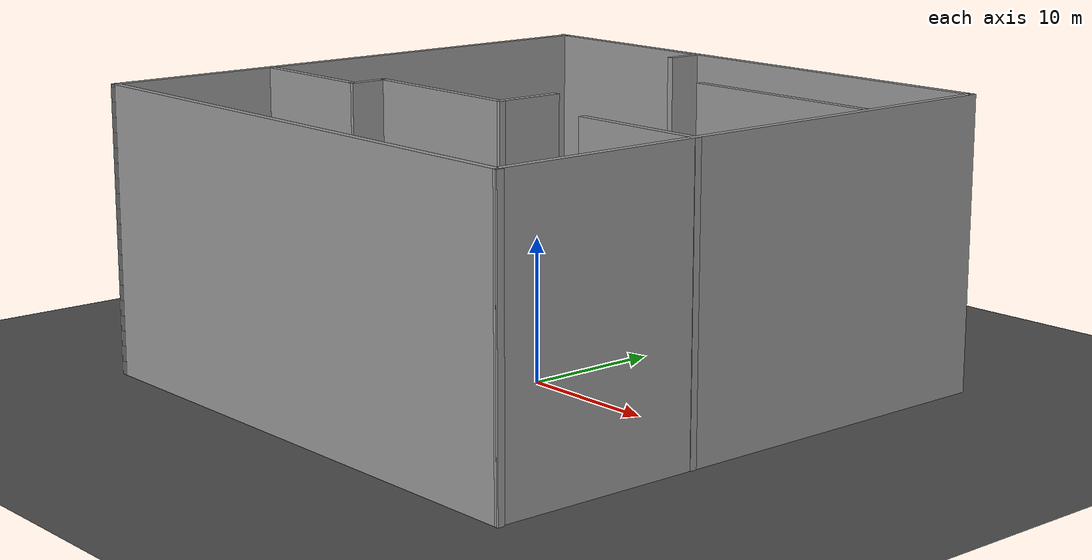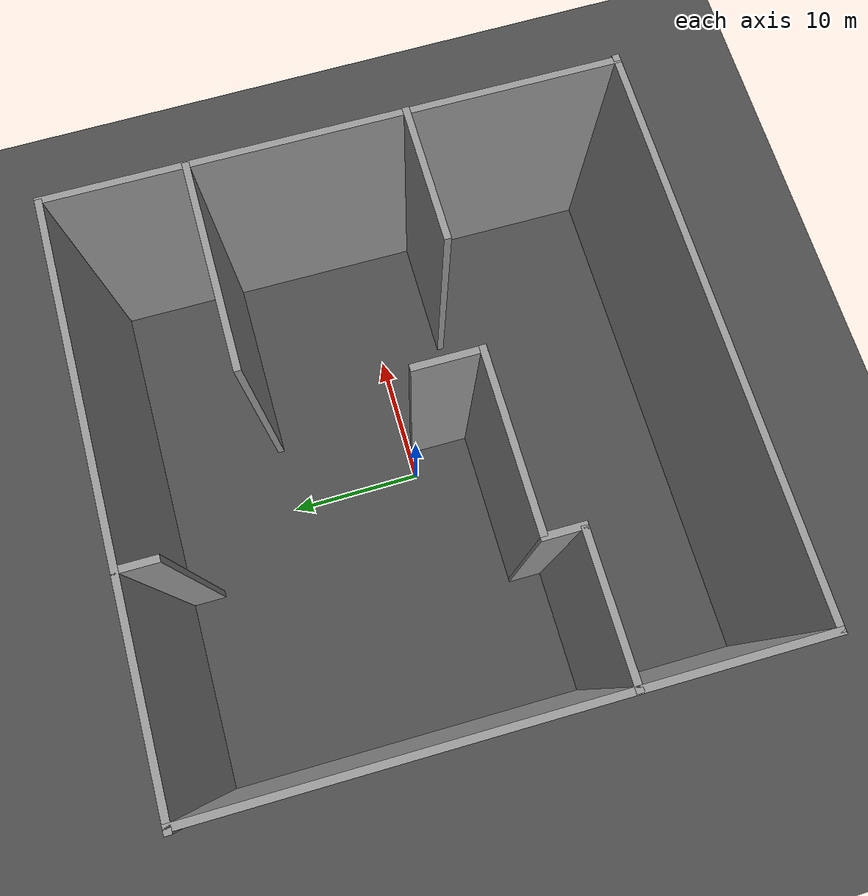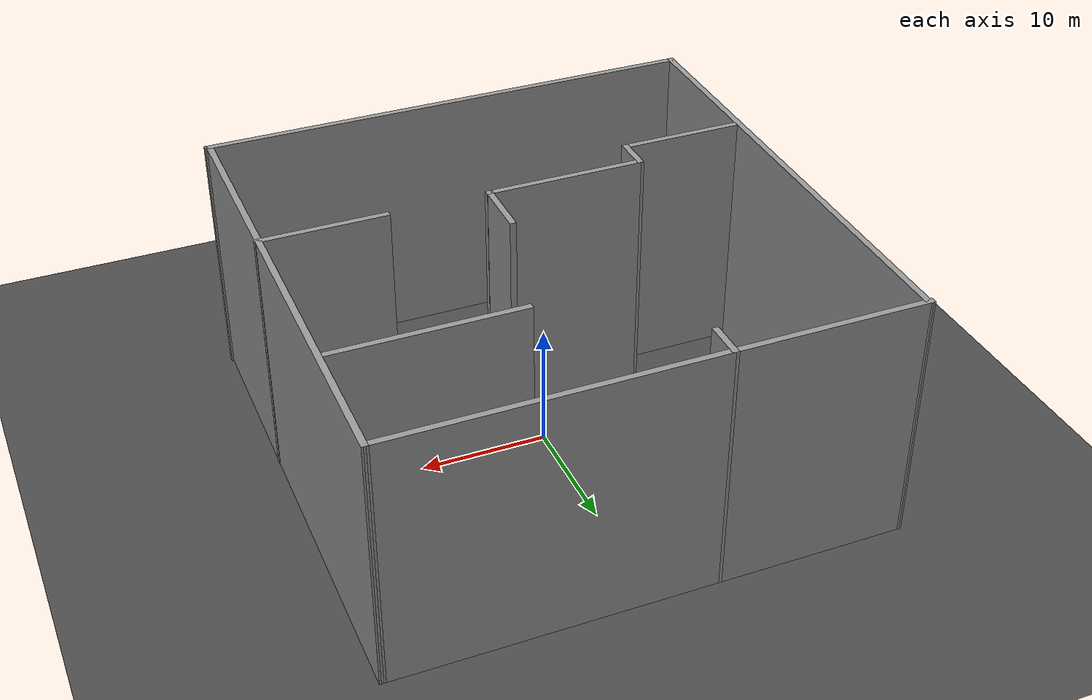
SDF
<sdf version="1.6">
 <world name="default">
  <light name="sun" type="directional">
   <pose>0 0 10 0 -0 0</pose>
   <diffuse>0.8 0.8 0.8 1</diffuse>
   <specular>0.2 0.2 0.2 1</specular>
   <attenuation>
    <range>1000</range>
    <constant>0.9</constant>
    <linear>0.01</linear>
    <quadratic>0.001</quadratic>
   </attenuation>
   <direction>-0.5 0.1 -0.9</direction>
  </light>
  <model name="ground_plane">
   <static>1</static>
   <link name="link">
    <collision name="collision">
     <geometry><plane><normal>0 0 1</normal><size>40000 40000</size></plane></geometry>
     <surface>
      <contact><collide_bitmask>65535</collide_bitmask></contact>
      <friction><ode><mu>100</mu><mu2>50</mu2></ode></friction>
     </surface>
    </collision>
    <visual name="visual">
     <cast_shadows>0</cast_shadows>
     <geometry><plane><normal>0 0 1</normal><size>50 50</size></plane></geometry>
     <material>
      <script><uri>file://media/materials/scripts/gazebo.material</uri><name>Gazebo/Road</name></script>
     </material>
    </visual>
   </link>
  </model>
  <gravity>0 0 -9.8</gravity>
  <magnetic_field>6e-06 2.3e-05 -4.2e-05</magnetic_field>
  <physics name="default_physics" default="0" type="ode">
   <max_step_size>0.001</max_step_size>
   <real_time_factor>1</real_time_factor>
   <real_time_update_rate>1000</real_time_update_rate>
  </physics>
  <scene><ambient>0.4 0.4 0.4 1</ambient><background>0.7 0.7 0.7 1</background><shadows>1</shadows></scene>
  <audio><device>default</device></audio>
  <spherical_coordinates>
   <surface_model>EARTH_WGS84</surface_model>
   <latitude_deg>0</latitude_deg>
   <longitude_deg>0</longitude_deg>
   <elevation>0</elevation>
   <heading_deg>0</heading_deg>
  </spherical_coordinates>
  <atmosphere type="adiabatic"/>
  <model name="wall1_clone">
   <link name="link">
    <enable_wind>1</enable_wind>
    <inertial>
     <mass>1</mass>
     <inertia><ixx>1</ixx><ixy>0</ixy><ixz>0</ixz><iyy>1</iyy><iyz>0</iyz><izz>1</izz></inertia>
    </inertial>
    <visual name="visual">
     <cast_shadows>0</cast_shadows>
     <geometry><box><size>40 0.5 20</size></box></geometry>
     <material>
      <script>
       <uri>model://grey_wall/materials/scripts</uri>
       <uri>model://grey_wall/materials/textures</uri>
       <name>vrc/grey_wall</name>
      </script>
      <shader type="pixel"><normal_map>__default__</normal_map></shader>
      <ambient>1 1 1 1</ambient>
      <diffuse>1 1 1 1</diffuse>
      <specular>0 0 0 1</specular>
      <emissive>0 0 0 1</emissive>
     </material>
    </visual>
    <collision name="collision">
     <geometry><box><size>40 0.5 20</size></box></geometry>
     <surface>
      <friction>
       <ode><mu>1</mu><mu2>1</mu2><fdir1>0 0 0</fdir1><slip1>0</slip1><slip2>0</slip2></ode>
       <torsional>
        <coefficient>1</coefficient>
        <patch_radius>0</patch_radius>
        <surface_radius>0</surface_radius>
        <use_patch_radius>1</use_patch_radius>
        <ode><slip>0</slip></ode>
       </torsional>
      </friction>
      <bounce><restitution_coefficient>0</restitution_coefficient><threshold>1e+06</threshold></bounce>
      <contact>
       <collide_without_contact>0</collide_without_contact>
       <collide_without_contact_bitmask>1</collide_without_contact_bitmask>
       <collide_bitmask>1</collide_bitmask>
       <ode>
        <soft_cfm>0</soft_cfm>
        <soft_erp>0.2</soft_erp>
        <kp>1e+13</kp>
        <kd>1</kd>
        <max_vel>0.01</max_vel>
        <min_depth>0</min_depth>
       </ode>
       <bullet>
        <split_impulse>1</split_impulse>
        <split_impulse_penetration_threshold>-0.01</split_impulse_penetration_threshold>
        <soft_cfm>0</soft_cfm>
        <soft_erp>0.2</soft_erp>
        <kp>1e+13</kp>
        <kd>1</kd>
       </bullet>
      </contact>
     </surface>
    </collision>
   </link>
   <static>1</static>
   <pose>0 19.75 10 0 -0 0</pose>
  </model>
  <model name="wall1">
   <link name="link">
    <enable_wind>1</enable_wind>
    <inertial>
     <mass>1</mass>
     <inertia><ixx>1</ixx><ixy>0</ixy><ixz>0</ixz><iyy>1</iyy><iyz>0</iyz><izz>1</izz></inertia>
    </inertial>
    <visual name="visual">
     <cast_shadows>0</cast_shadows>
     <geometry><box><size>40 0.5 20</size></box></geometry>
     <material>
      <script>
       <uri>model://grey_wall/materials/scripts</uri>
       <uri>model://grey_wall/materials/textures</uri>
       <name>vrc/grey_wall</name>
      </script>
      <shader type="pixel"><normal_map>__default__</normal_map></shader>
      <ambient>1 1 1 1</ambient>
      <diffuse>1 1 1 1</diffuse>
      <specular>0 0 0 1</specular>
      <emissive>0 0 0 1</emissive>
     </material>
    </visual>
    <collision name="collision">
     <geometry><box><size>40 0.5 20</size></box></geometry>
     <surface>
      <friction>
       <ode><mu>1</mu><mu2>1</mu2><fdir1>0 0 0</fdir1><slip1>0</slip1><slip2>0</slip2></ode>
       <torsional>
        <coefficient>1</coefficient>
        <patch_radius>0</patch_radius>
        <surface_radius>0</surface_radius>
        <use_patch_radius>1</use_patch_radius>
        <ode><slip>0</slip></ode>
       </torsional>
      </friction>
      <bounce><restitution_coefficient>0</restitution_coefficient><threshold>1e+06</threshold></bounce>
      <contact>
       <collide_without_contact>0</collide_without_contact>
       <collide_without_contact_bitmask>1</collide_without_contact_bitmask>
       <collide_bitmask>1</collide_bitmask>
       <ode>
        <soft_cfm>0</soft_cfm>
        <soft_erp>0.2</soft_erp>
        <kp>1e+13</kp>
        <kd>1</kd>
        <max_vel>0.01</max_vel>
        <min_depth>0</min_depth>
       </ode>
       <bullet>
        <split_impulse>1</split_impulse>
        <split_impulse_penetration_threshold>-0.01</split_impulse_penetration_threshold>
        <soft_cfm>0</soft_cfm>
        <soft_erp>0.2</soft_erp>
        <kp>1e+13</kp>
        <kd>1</kd>
       </bullet>
      </contact>
     </surface>
    </collision>
   </link>
   <static>1</static>
   <pose>0 -19.75 10 0 -0 0</pose>
  </model>
  <model name="wall1_1_clone_clone">
   <link name="link">
    <enable_wind>1</enable_wind>
    <inertial>
     <mass>1</mass>
     <inertia><ixx>1</ixx><ixy>0</ixy><ixz>0</ixz><iyy>1</iyy><iyz>0</iyz><izz>1</izz></inertia>
    </inertial>
    <visual name="visual">
     <cast_shadows>0</cast_shadows>
     <geometry><box><size>5 0.5 20</size></box></geometry>
     <material>
      <script>
       <uri>model://grey_wall/materials/scripts</uri>
       <uri>model://grey_wall/materials/textures</uri>
       <name>vrc/grey_wall</name>
      </script>
      <shader type="pixel"><normal_map>__default__</normal_map></shader>
      <ambient>1 1 1 1</ambient>
      <diffuse>1 1 1 1</diffuse>
      <specular>0 0 0 1</specular>
      <emissive>0 0 0 1</emissive>
     </material>
    </visual>
    <collision name="collision">
     <geometry><box><size>5 0.5 20</size></box></geometry>
     <surface>
      <friction>
       <ode><mu>1</mu><mu2>1</mu2><fdir1>0 0 0</fdir1><slip1>0</slip1><slip2>0</slip2></ode>
       <torsional>
        <coefficient>1</coefficient>
        <patch_radius>0</patch_radius>
        <surface_radius>0</surface_radius>
        <use_patch_radius>1</use_patch_radius>
        <ode><slip>0</slip></ode>
       </torsional>
      </friction>
      <bounce><restitution_coefficient>0</restitution_coefficient><threshold>1e+06</threshold></bounce>
      <contact>
       <collide_without_contact>0</collide_without_contact>
       <collide_without_contact_bitmask>1</collide_without_contact_bitmask>
       <collide_bitmask>1</collide_bitmask>
       <ode>
        <soft_cfm>0</soft_cfm>
        <soft_erp>0.2</soft_erp>
        <kp>1e+13</kp>
        <kd>1</kd>
        <max_vel>0.01</max_vel>
        <min_depth>0</min_depth>
       </ode>
       <bullet>
        <split_impulse>1</split_impulse>
        <split_impulse_penetration_threshold>-0.01</split_impulse_penetration_threshold>
        <soft_cfm>0</soft_cfm>
        <soft_erp>0.2</soft_erp>
        <kp>1e+13</kp>
        <kd>1</kd>
       </bullet>
      </contact>
     </surface>
    </collision>
   </link>
   <static>1</static>
   <pose>2.25 -2.75 10 0 -0 1.56334</pose>
  </model>
  <model name="wall1_2">
   <link name="link">
    <enable_wind>1</enable_wind>
    <inertial>
     <mass>1</mass>
     <inertia><ixx>1</ixx><ixy>0</ixy><ixz>0</ixz><iyy>1</iyy><iyz>0</iyz><izz>1</izz></inertia>
    </inertial>
    <visual name="visual">
     <cast_shadows>0</cast_shadows>
     <geometry><box><size>12.5 0.5 20</size></box></geometry>
     <material>
      <script>
       <uri>model://grey_wall/materials/scripts</uri>
       <uri>model://grey_wall/materials/textures</uri>
       <name>vrc/grey_wall</name>
      </script>
      <shader type="pixel"><normal_map>__default__</normal_map></shader>
      <ambient>1 1 1 1</ambient>
      <diffuse>1 1 1 1</diffuse>
      <specular>0 0 0 1</specular>
      <emissive>0 0 0 1</emissive>
     </material>
    </visual>
    <collision name="collision">
     <geometry><box><size>12.5 0.5 20</size></box></geometry>
     <surface>
      <friction>
       <ode><mu>1</mu><mu2>1</mu2><fdir1>0 0 0</fdir1><slip1>0</slip1><slip2>0</slip2></ode>
       <torsional>
        <coefficient>1</coefficient>
        <patch_radius>0</patch_radius>
        <surface_radius>0</surface_radius>
        <use_patch_radius>1</use_patch_radius>
        <ode><slip>0</slip></ode>
       </torsional>
      </friction>
      <bounce><restitution_coefficient>0</restitution_coefficient><threshold>1e+06</threshold></bounce>
      <contact>
       <collide_without_contact>0</collide_without_contact>
       <collide_without_contact_bitmask>1</collide_without_contact_bitmask>
       <collide_bitmask>1</collide_bitmask>
       <ode>
        <soft_cfm>0</soft_cfm>
        <soft_erp>0.2</soft_erp>
        <kp>1e+13</kp>
        <kd>1</kd>
        <max_vel>0.01</max_vel>
        <min_depth>0</min_depth>
       </ode>
       <bullet>
        <split_impulse>1</split_impulse>
        <split_impulse_penetration_threshold>-0.01</split_impulse_penetration_threshold>
        <soft_cfm>0</soft_cfm>
        <soft_erp>0.2</soft_erp>
        <kp>1e+13</kp>
        <kd>1</kd>
       </bullet>
      </contact>
     </surface>
    </collision>
   </link>
   <static>1</static>
   <pose>-3.75 -5 10 0 -0 0</pose>
  </model>
  <model name="wall1_2_clone">
   <link name="link">
    <enable_wind>1</enable_wind>
    <inertial>
     <mass>1</mass>
     <inertia><ixx>1</ixx><ixy>0</ixy><ixz>0</ixz><iyy>1</iyy><iyz>0</iyz><izz>1</izz></inertia>
    </inertial>
    <visual name="visual">
     <cast_shadows>0</cast_shadows>
     <geometry><box><size>10 0.5 20</size></box></geometry>
     <material>
      <script>
       <uri>model://grey_wall/materials/scripts</uri>
       <uri>model://grey_wall/materials/textures</uri>
       <name>vrc/grey_wall</name>
      </script>
      <shader type="pixel"><normal_map>__default__</normal_map></shader>
      <ambient>1 1 1 1</ambient>
      <diffuse>1 1 1 1</diffuse>
      <specular>0 0 0 1</specular>
      <emissive>0 0 0 1</emissive>
     </material>
    </visual>
    <collision name="collision">
     <geometry><box><size>10 0.5 20</size></box></geometry>
     <surface>
      <friction>
       <ode><mu>1</mu><mu2>1</mu2><fdir1>0 0 0</fdir1><slip1>0</slip1><slip2>0</slip2></ode>
       <torsional>
        <coefficient>1</coefficient>
        <patch_radius>0</patch_radius>
        <surface_radius>0</surface_radius>
        <use_patch_radius>1</use_patch_radius>
        <ode><slip>0</slip></ode>
       </torsional>
      </friction>
      <bounce><restitution_coefficient>0</restitution_coefficient><threshold>1e+06</threshold></bounce>
      <contact>
       <collide_without_contact>0</collide_without_contact>
       <collide_without_contact_bitmask>1</collide_without_contact_bitmask>
       <collide_bitmask>1</collide_bitmask>
       <ode>
        <soft_cfm>0</soft_cfm>
        <soft_erp>0.2</soft_erp>
        <kp>1e+13</kp>
        <kd>1</kd>
        <max_vel>0.01</max_vel>
        <min_depth>0</min_depth>
       </ode>
       <bullet>
        <split_impulse>1</split_impulse>
        <split_impulse_penetration_threshold>-0.01</split_impulse_penetration_threshold>
        <soft_cfm>0</soft_cfm>
        <soft_erp>0.2</soft_erp>
        <kp>1e+13</kp>
        <kd>1</kd>
       </bullet>
      </contact>
     </surface>
    </collision>
   </link>
   <static>1</static>
   <pose>-15 -7.5 10 0 -0 0</pose>
  </model>
  <model name="wall1_1">
   <link name="link">
    <enable_wind>1</enable_wind>
    <inertial>
     <mass>1</mass>
     <inertia><ixx>1</ixx><ixy>0</ixy><ixz>0</ixz><iyy>1</iyy><iyz>0</iyz><izz>1</izz></inertia>
    </inertial>
    <visual name="visual">
     <cast_shadows>0</cast_shadows>
     <geometry><box><size>3 0.5 20</size></box></geometry>
     <material>
      <script>
       <uri>model://grey_wall/materials/scripts</uri>
       <uri>model://grey_wall/materials/textures</uri>
       <name>vrc/grey_wall</name>
      </script>
      <shader type="pixel"><normal_map>__default__</normal_map></shader>
      <ambient>1 1 1 1</ambient>
      <diffuse>1 1 1 1</diffuse>
      <specular>0 0 0 1</specular>
      <emissive>0 0 0 1</emissive>
     </material>
    </visual>
    <collision name="collision">
     <geometry><box><size>3 0.5 20</size></box></geometry>
     <surface>
      <friction>
       <ode><mu>1</mu><mu2>1</mu2><fdir1>0 0 0</fdir1><slip1>0</slip1><slip2>0</slip2></ode>
       <torsional>
        <coefficient>1</coefficient>
        <patch_radius>0</patch_radius>
        <surface_radius>0</surface_radius>
        <use_patch_radius>1</use_patch_radius>
        <ode><slip>0</slip></ode>
       </torsional>
      </friction>
      <bounce><restitution_coefficient>0</restitution_coefficient><threshold>1e+06</threshold></bounce>
      <contact>
       <collide_without_contact>0</collide_without_contact>
       <collide_without_contact_bitmask>1</collide_without_contact_bitmask>
       <collide_bitmask>1</collide_bitmask>
       <ode>
        <soft_cfm>0</soft_cfm>
        <soft_erp>0.2</soft_erp>
        <kp>1e+13</kp>
        <kd>1</kd>
        <max_vel>0.01</max_vel>
        <min_depth>0</min_depth>
       </ode>
       <bullet>
        <split_impulse>1</split_impulse>
        <split_impulse_penetration_threshold>-0.01</split_impulse_penetration_threshold>
        <soft_cfm>0</soft_cfm>
        <soft_erp>0.2</soft_erp>
        <kp>1e+13</kp>
        <kd>1</kd>
       </bullet>
      </contact>
     </surface>
    </collision>
   </link>
   <static>1</static>
   <pose>-10 -6.25 10 0 -0 1.56334</pose>
  </model>
  <model name="wall2">
   <link name="link">
    <enable_wind>1</enable_wind>
    <inertial>
     <mass>1</mass>
     <inertia><ixx>1</ixx><ixy>0</ixy><ixz>0</ixz><iyy>1</iyy><iyz>0</iyz><izz>1</izz></inertia>
    </inertial>
    <visual name="visual">
     <cast_shadows>0</cast_shadows>
     <geometry><box><size>40 0.5 20</size></box></geometry>
     <material>
      <script>
       <uri>model://grey_wall/materials/scripts</uri>
       <uri>model://grey_wall/materials/textures</uri>
       <name>vrc/grey_wall</name>
      </script>
      <shader type="pixel"><normal_map>__default__</normal_map></shader>
      <ambient>1 1 1 1</ambient>
      <diffuse>1 1 1 1</diffuse>
      <specular>0 0 0 1</specular>
      <emissive>0 0 0 1</emissive>
     </material>
    </visual>
    <collision name="collision">
     <geometry><box><size>40 0.5 20</size></box></geometry>
     <surface>
      <friction>
       <ode><mu>1</mu><mu2>1</mu2><fdir1>0 0 0</fdir1><slip1>0</slip1><slip2>0</slip2></ode>
       <torsional>
        <coefficient>1</coefficient>
        <patch_radius>0</patch_radius>
        <surface_radius>0</surface_radius>
        <use_patch_radius>1</use_patch_radius>
        <ode><slip>0</slip></ode>
       </torsional>
      </friction>
      <bounce><restitution_coefficient>0</restitution_coefficient><threshold>1e+06</threshold></bounce>
      <contact>
       <collide_without_contact>0</collide_without_contact>
       <collide_without_contact_bitmask>1</collide_without_contact_bitmask>
       <collide_bitmask>1</collide_bitmask>
       <ode>
        <soft_cfm>0</soft_cfm>
        <soft_erp>0.2</soft_erp>
        <kp>1e+13</kp>
        <kd>1</kd>
        <max_vel>0.01</max_vel>
        <min_depth>0</min_depth>
       </ode>
       <bullet>
        <split_impulse>1</split_impulse>
        <split_impulse_penetration_threshold>-0.01</split_impulse_penetration_threshold>
        <soft_cfm>0</soft_cfm>
        <soft_erp>0.2</soft_erp>
        <kp>1e+13</kp>
        <kd>1</kd>
       </bullet>
      </contact>
     </surface>
    </collision>
   </link>
   <static>1</static>
   <pose>19.75 0 10 0 -0 1.56334</pose>
  </model>
  <model name="wall2_clone">
   <link name="link">
    <enable_wind>1</enable_wind>
    <inertial>
     <mass>1</mass>
     <inertia><ixx>1</ixx><ixy>0</ixy><ixz>0</ixz><iyy>1</iyy><iyz>0</iyz><izz>1</izz></inertia>
    </inertial>
    <visual name="visual">
     <cast_shadows>0</cast_shadows>
     <geometry><box><size>40 0.5 20</size></box></geometry>
     <material>
      <script>
       <uri>model://grey_wall/materials/scripts</uri>
       <uri>model://grey_wall/materials/textures</uri>
       <name>vrc/grey_wall</name>
      </script>
      <shader type="pixel"><normal_map>__default__</normal_map></shader>
      <ambient>1 1 1 1</ambient>
      <diffuse>1 1 1 1</diffuse>
      <specular>0 0 0 1</specular>
      <emissive>0 0 0 1</emissive>
     </material>
    </visual>
    <collision name="collision">
     <geometry><box><size>40 0.5 20</size></box></geometry>
     <surface>
      <friction>
       <ode><mu>1</mu><mu2>1</mu2><fdir1>0 0 0</fdir1><slip1>0</slip1><slip2>0</slip2></ode>
       <torsional>
        <coefficient>1</coefficient>
        <patch_radius>0</patch_radius>
        <surface_radius>0</surface_radius>
        <use_patch_radius>1</use_patch_radius>
        <ode><slip>0</slip></ode>
       </torsional>
      </friction>
      <bounce><restitution_coefficient>0</restitution_coefficient><threshold>1e+06</threshold></bounce>
      <contact>
       <collide_without_contact>0</collide_without_contact>
       <collide_without_contact_bitmask>1</collide_without_contact_bitmask>
       <collide_bitmask>1</collide_bitmask>
       <ode>
        <soft_cfm>0</soft_cfm>
        <soft_erp>0.2</soft_erp>
        <kp>1e+13</kp>
        <kd>1</kd>
        <max_vel>0.01</max_vel>
        <min_depth>0</min_depth>
       </ode>
       <bullet>
        <split_impulse>1</split_impulse>
        <split_impulse_penetration_threshold>-0.01</split_impulse_penetration_threshold>
        <soft_cfm>0</soft_cfm>
        <soft_erp>0.2</soft_erp>
        <kp>1e+13</kp>
        <kd>1</kd>
       </bullet>
      </contact>
     </surface>
    </collision>
   </link>
   <static>1</static>
   <pose>-19.75 0 10 0 -0 1.56334</pose>
  </model>
  <model name="wall1_2_1_clone">
   <link name="link">
    <enable_wind>1</enable_wind>
    <inertial>
     <mass>1</mass>
     <inertia><ixx>1</ixx><ixy>0</ixy><ixz>0</ixz><iyy>1</iyy><iyz>0</iyz><izz>1</izz></inertia>
    </inertial>
    <visual name="visual">
     <cast_shadows>0</cast_shadows>
     <geometry><box><size>15 0.5 20</size></box></geometry>
     <material>
      <script>
       <uri>model://grey_wall/materials/scripts</uri>
       <uri>model://grey_wall/materials/textures</uri>
       <name>vrc/grey_wall</name>
      </script>
      <shader type="pixel"><normal_map>__default__</normal_map></shader>
      <ambient>1 1 1 1</ambient>
      <diffuse>1 1 1 1</diffuse>
      <specular>0 0 0 1</specular>
      <emissive>0 0 0 1</emissive>
     </material>
    </visual>
    <collision name="collision">
     <geometry><box><size>15 0.5 20</size></box></geometry>
     <surface>
      <friction>
       <ode><mu>1</mu><mu2>1</mu2><fdir1>0 0 0</fdir1><slip1>0</slip1><slip2>0</slip2></ode>
       <torsional>
        <coefficient>1</coefficient>
        <patch_radius>0</patch_radius>
        <surface_radius>0</surface_radius>
        <use_patch_radius>1</use_patch_radius>
        <ode><slip>0</slip></ode>
       </torsional>
      </friction>
      <bounce><restitution_coefficient>0</restitution_coefficient><threshold>1e+06</threshold></bounce>
      <contact>
       <collide_without_contact>0</collide_without_contact>
       <collide_without_contact_bitmask>1</collide_without_contact_bitmask>
       <collide_bitmask>1</collide_bitmask>
       <ode>
        <soft_cfm>0</soft_cfm>
        <soft_erp>0.2</soft_erp>
        <kp>1e+13</kp>
        <kd>1</kd>
        <max_vel>0.01</max_vel>
        <min_depth>0</min_depth>
       </ode>
       <bullet>
        <split_impulse>1</split_impulse>
        <split_impulse_penetration_threshold>-0.01</split_impulse_penetration_threshold>
        <soft_cfm>0</soft_cfm>
        <soft_erp>0.2</soft_erp>
        <kp>1e+13</kp>
        <kd>1</kd>
       </bullet>
      </contact>
     </surface>
    </collision>
   </link>
   <static>1</static>
   <pose>12.5 10 10 0 -0 0</pose>
  </model>
  <model name="wall1_2_0">
   <link name="link">
    <enable_wind>1</enable_wind>
    <inertial>
     <mass>1</mass>
     <inertia><ixx>1</ixx><ixy>0</ixy><ixz>0</ixz><iyy>1</iyy><iyz>0</iyz><izz>1</izz></inertia>
    </inertial>
    <visual name="visual">
     <cast_shadows>0</cast_shadows>
     <geometry><box><size>3 0.5 20</size></box></geometry>
     <material>
      <script>
       <uri>model://grey_wall/materials/scripts</uri>
       <uri>model://grey_wall/materials/textures</uri>
       <name>vrc/grey_wall</name>
      </script>
      <shader type="pixel"><normal_map>__default__</normal_map></shader>
      <ambient>1 1 1 1</ambient>
      <diffuse>1 1 1 1</diffuse>
      <specular>0 0 0 1</specular>
      <emissive>0 0 0 1</emissive>
     </material>
    </visual>
    <collision name="collision">
     <geometry><box><size>3 0.5 20</size></box></geometry>
     <surface>
      <friction>
       <ode><mu>1</mu><mu2>1</mu2><fdir1>0 0 0</fdir1><slip1>0</slip1><slip2>0</slip2></ode>
       <torsional>
        <coefficient>1</coefficient>
        <patch_radius>0</patch_radius>
        <surface_radius>0</surface_radius>
        <use_patch_radius>1</use_patch_radius>
        <ode><slip>0</slip></ode>
       </torsional>
      </friction>
      <bounce><restitution_coefficient>0</restitution_coefficient><threshold>1e+06</threshold></bounce>
      <contact>
       <collide_without_contact>0</collide_without_contact>
       <collide_without_contact_bitmask>1</collide_without_contact_bitmask>
       <collide_bitmask>1</collide_bitmask>
       <ode>
        <soft_cfm>0</soft_cfm>
        <soft_erp>0.2</soft_erp>
        <kp>1e+13</kp>
        <kd>1</kd>
        <max_vel>0.01</max_vel>
        <min_depth>0</min_depth>
       </ode>
       <bullet>
        <split_impulse>1</split_impulse>
        <split_impulse_penetration_threshold>-0.01</split_impulse_penetration_threshold>
        <soft_cfm>0</soft_cfm>
        <soft_erp>0.2</soft_erp>
        <kp>1e+13</kp>
        <kd>1</kd>
       </bullet>
      </contact>
     </surface>
    </collision>
   </link>
   <static>1</static>
   <pose>-5 18.5 10 0 -0 1.56334</pose>
  </model>
  <model name="wall1_2_1_clone_clone">
   <link name="link">
    <enable_wind>1</enable_wind>
    <inertial>
     <mass>1</mass>
     <inertia><ixx>1</ixx><ixy>0</ixy><ixz>0</ixz><iyy>1</iyy><iyz>0</iyz><izz>1</izz></inertia>
    </inertial>
    <visual name="visual">
     <cast_shadows>0</cast_shadows>
     <geometry><box><size>10 0.5 20</size></box></geometry>
     <material>
      <script>
       <uri>model://grey_wall/materials/scripts</uri>
       <uri>model://grey_wall/materials/textures</uri>
       <name>vrc/grey_wall</name>
      </script>
      <shader type="pixel"><normal_map>__default__</normal_map></shader>
      <ambient>1 1 1 1</ambient>
      <diffuse>1 1 1 1</diffuse>
      <specular>0 0 0 1</specular>
      <emissive>0 0 0 1</emissive>
     </material>
    </visual>
    <collision name="collision">
     <geometry><box><size>10 0.5 20</size></box></geometry>
     <surface>
      <friction>
       <ode><mu>1</mu><mu2>1</mu2><fdir1>0 0 0</fdir1><slip1>0</slip1><slip2>0</slip2></ode>
       <torsional>
        <coefficient>1</coefficient>
        <patch_radius>0</patch_radius>
        <surface_radius>0</surface_radius>
        <use_patch_radius>1</use_patch_radius>
        <ode><slip>0</slip></ode>
       </torsional>
      </friction>
      <bounce><restitution_coefficient>0</restitution_coefficient><threshold>1e+06</threshold></bounce>
      <contact>
       <collide_without_contact>0</collide_without_contact>
       <collide_without_contact_bitmask>1</collide_without_contact_bitmask>
       <collide_bitmask>1</collide_bitmask>
       <ode>
        <soft_cfm>0</soft_cfm>
        <soft_erp>0.2</soft_erp>
        <kp>1e+13</kp>
        <kd>1</kd>
        <max_vel>0.01</max_vel>
        <min_depth>0</min_depth>
       </ode>
       <bullet>
        <split_impulse>1</split_impulse>
        <split_impulse_penetration_threshold>-0.01</split_impulse_penetration_threshold>
        <soft_cfm>0</soft_cfm>
        <soft_erp>0.2</soft_erp>
        <kp>1e+13</kp>
        <kd>1</kd>
       </bullet>
      </contact>
     </surface>
    </collision>
   </link>
   <static>1</static>
   <pose>15 -5 10 0 -0 0</pose>
  </model>
 </world>
</sdf>
